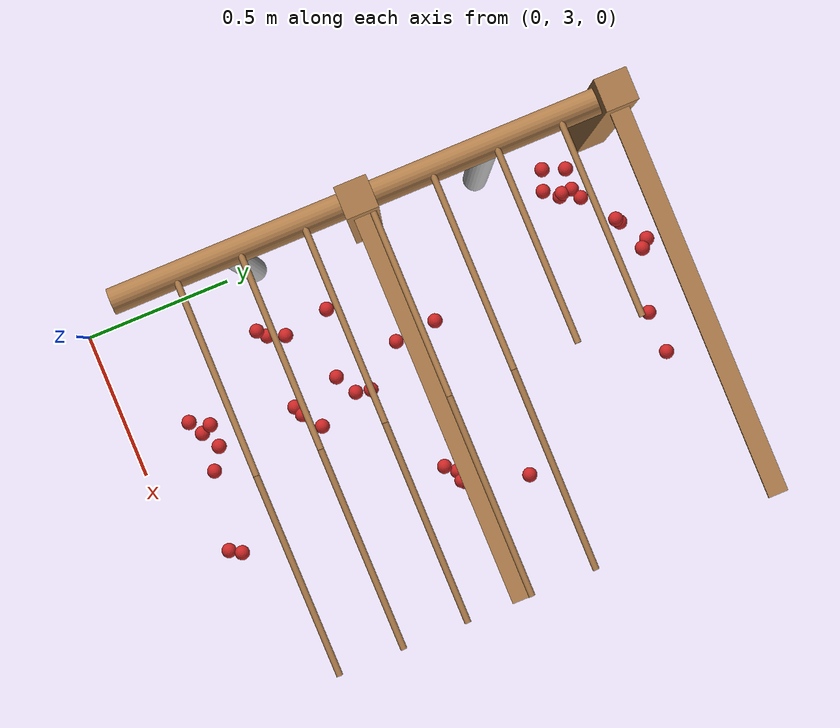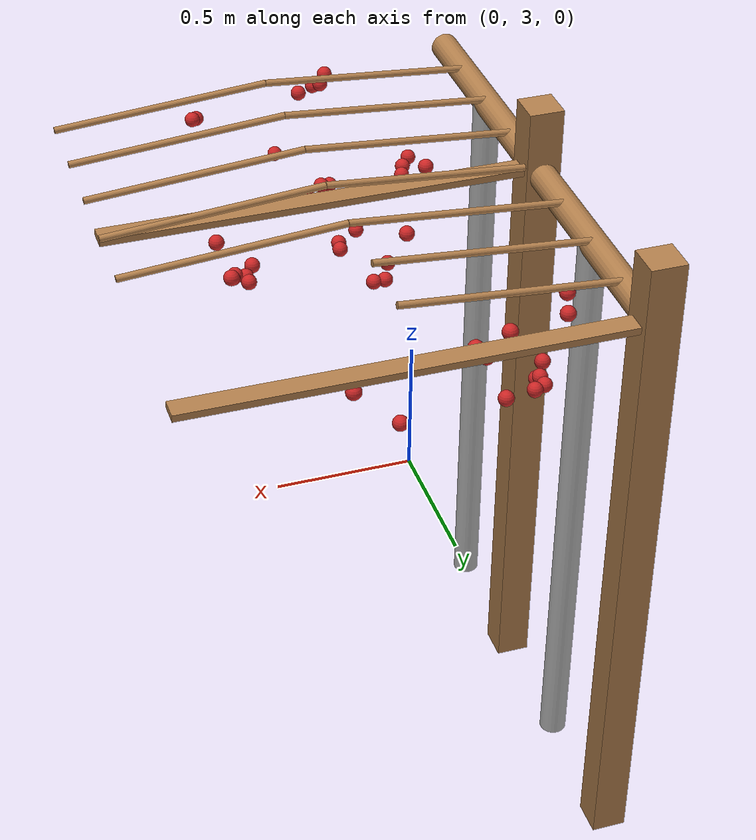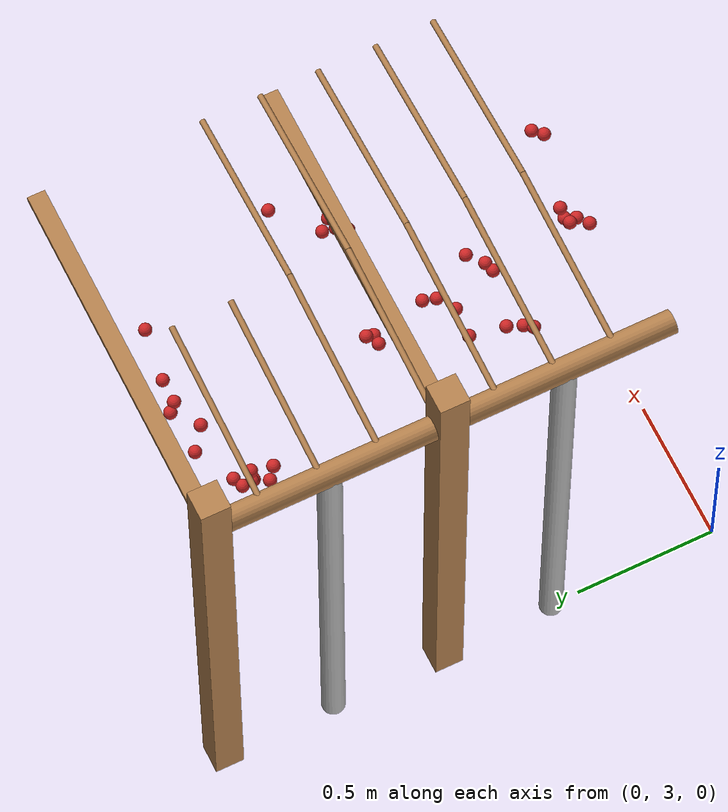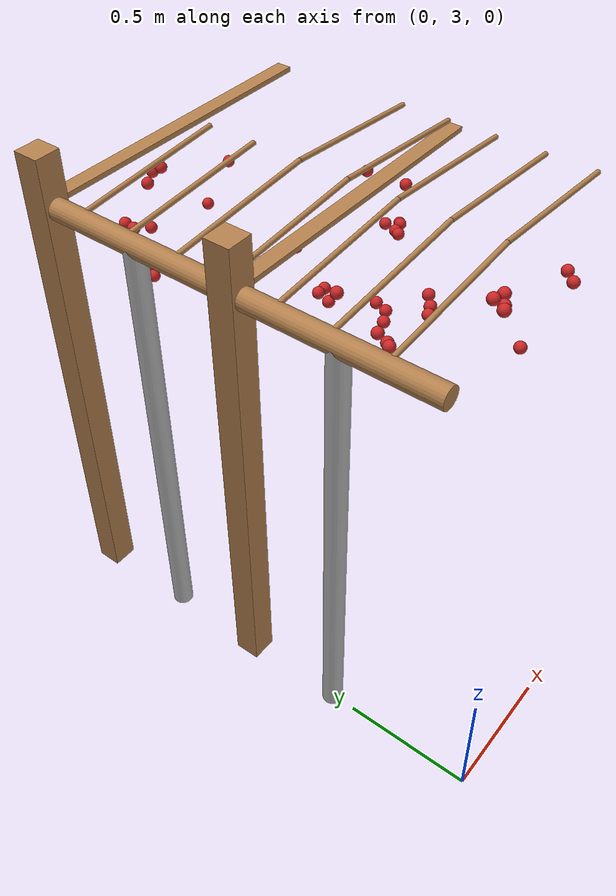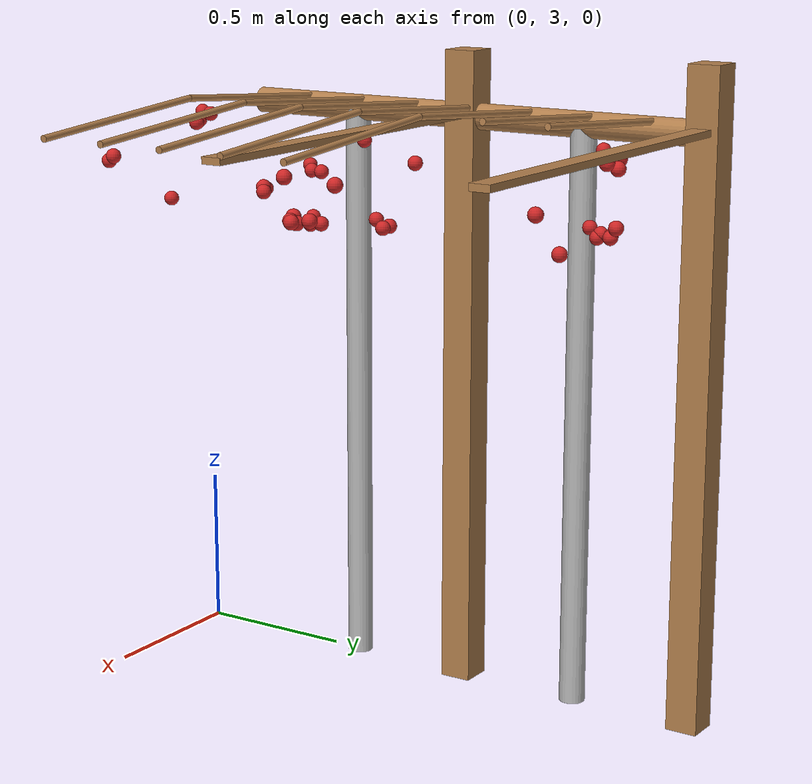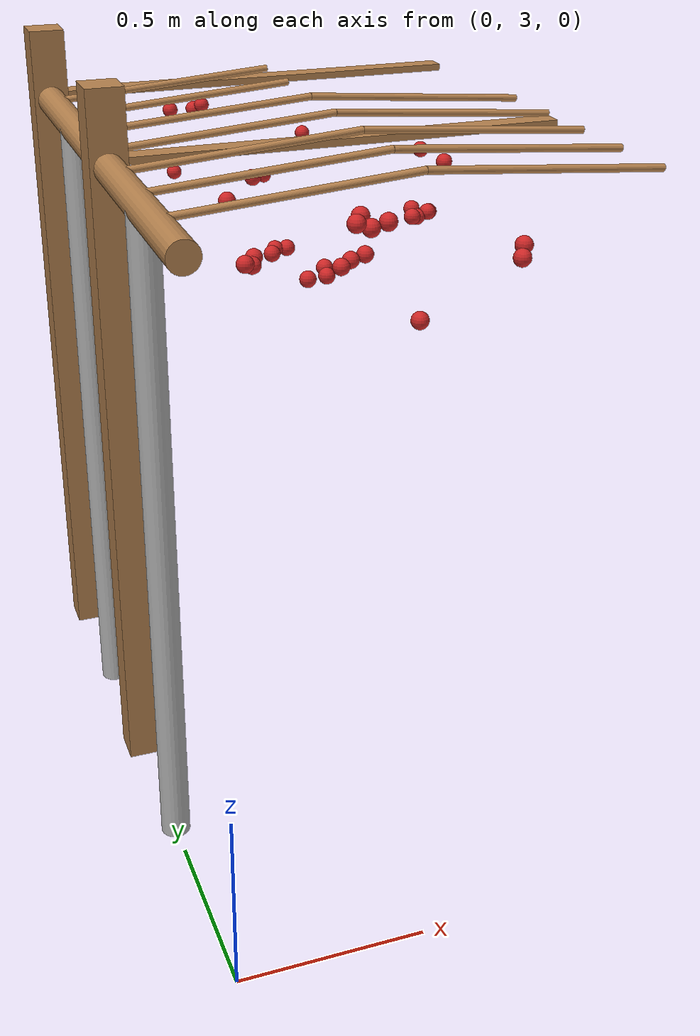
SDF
<sdf version="1.4">
 <model name="pergola">
  <include><name>post_5</name><pose>0.0 4.0 0 0 0 0</pose><uri>model://post</uri></include>
  <include><name>post_6</name><pose>0.0 4.800000000000001 0 0 0 0</pose><uri>model://post</uri></include>
  <link name="beam_5">
   <pose>0.625 4.0 1.81 0 0 0</pose>
   <collision name="collision"><geometry><box><size>1.25 0.06 0.02</size></box></geometry></collision>
   <visual name="visual">
    <geometry><box><size>1.25 0.06 0.02</size></box></geometry>
    <material><script><name>Gazebo/Wood</name></script></material>
   </visual>
   <inertial>
    <mass>5</mass>
    <inertia>
     <ixx>0.0016666666666666668</ixx>
     <ixy>0.0</ixy>
     <ixz>0.0</ixz>
     <iyy>0.6525416666666667</iyy>
     <iyz>0.0</iyz>
     <izz>0.6512083333333333</izz>
    </inertia>
   </inertial>
  </link>
  <link name="beam_6">
   <pose>0.625 4.800000000000001 1.81 0 0 0</pose>
   <collision name="collision"><geometry><box><size>1.25 0.06 0.02</size></box></geometry></collision>
   <visual name="visual">
    <geometry><box><size>1.25 0.06 0.02</size></box></geometry>
    <material><script><name>Gazebo/Wood</name></script></material>
   </visual>
   <inertial>
    <mass>5</mass>
    <inertia>
     <ixx>0.0016666666666666668</ixx>
     <ixy>0.0</ixy>
     <ixz>0.0</ixz>
     <iyy>0.6525416666666667</iyy>
     <iyz>0.0</iyz>
     <izz>0.6512083333333333</izz>
    </inertia>
   </inertial>
  </link>
  <include><name>tree_4</name><pose>0.0 3.6 0 0 0 0</pose><uri>model://tree_trunk</uri></include>
  <include><name>tree_5</name><pose>0.0 4.4 0 0 0 0</pose><uri>model://tree_trunk</uri></include>
  <link name="baseBranch_4">
   <pose>0.0 3.6 1.8 1.5707963267948966 0 0</pose>
   <collision name="collision">
    <geometry><cylinder><radius>0.04</radius><length>0.74</length></cylinder></geometry>
   </collision>
   <visual name="visual">
    <geometry><cylinder><radius>0.04</radius><length>0.74</length></cylinder></geometry>
    <material><script><name>Gazebo/WoodFloor</name></script></material>
   </visual>
   <inertial>
    <mass>10</mass>
    <inertia>
     <ixx>0.4603333333333333</ixx>
     <ixy>0.0</ixy>
     <ixz>0.0</ixz>
     <iyy>0.4603333333333333</iyy>
     <iyz>0.0</iyz>
     <izz>0.008</izz>
    </inertia>
   </inertial>
  </link>
  <link name="baseBranch_5">
   <pose>0.0 4.4 1.8 1.5707963267948966 0 0</pose>
   <collision name="collision">
    <geometry><cylinder><radius>0.04</radius><length>0.74</length></cylinder></geometry>
   </collision>
   <visual name="visual">
    <geometry><cylinder><radius>0.04</radius><length>0.74</length></cylinder></geometry>
    <material><script><name>Gazebo/WoodFloor</name></script></material>
   </visual>
   <inertial>
    <mass>10</mass>
    <inertia>
     <ixx>0.4603333333333333</ixx>
     <ixy>0.0</ixy>
     <ixz>0.0</ixz>
     <iyy>0.4603333333333333</iyy>
     <iyz>0.0</iyz>
     <izz>0.008</izz>
    </inertia>
   </inertial>
  </link>
  <link name="vine_34">
   <pose>0.3125 3.43 1.85 0 1.4909663410826592 0</pose>
   <collision name="collision">
    <geometry><cylinder><radius>0.01</radius><length>0.6269968101992226</length></cylinder></geometry>
   </collision>
   <visual name="visual">
    <geometry><cylinder><radius>0.01</radius><length>0.6269968101992226</length></cylinder></geometry>
    <material><script><name>Gazebo/WoodFloor</name></script></material>
   </visual>
   <inertial>
    <mass>5</mass>
    <inertia>
     <ixx>0.1639270833333333</ixx>
     <ixy>0.0</ixy>
     <ixz>0.0</ixz>
     <iyy>0.1639270833333333</iyy>
     <iyz>0.0</iyz>
     <izz>0.00025</izz>
    </inertia>
   </inertial>
  </link>
  <link name="vine_35">
   <pose>0.9375 3.43 1.85 0 -1.4909663410826592 0</pose>
   <collision name="collision">
    <geometry><cylinder><radius>0.01</radius><length>0.6269968101992226</length></cylinder></geometry>
   </collision>
   <visual name="visual">
    <geometry><cylinder><radius>0.01</radius><length>0.6269968101992226</length></cylinder></geometry>
    <material><script><name>Gazebo/WoodFloor</name></script></material>
   </visual>
   <inertial>
    <mass>5</mass>
    <inertia>
     <ixx>0.1639270833333333</ixx>
     <ixy>0.0</ixy>
     <ixz>0.0</ixz>
     <iyy>0.1639270833333333</iyy>
     <iyz>0.0</iyz>
     <izz>0.00025</izz>
    </inertia>
   </inertial>
  </link>
  <link name="vine_36">
   <pose>0.3125 3.63 1.85 0 1.4909663410826592 0</pose>
   <collision name="collision">
    <geometry><cylinder><radius>0.01</radius><length>0.6269968101992226</length></cylinder></geometry>
   </collision>
   <visual name="visual">
    <geometry><cylinder><radius>0.01</radius><length>0.6269968101992226</length></cylinder></geometry>
    <material><script><name>Gazebo/WoodFloor</name></script></material>
   </visual>
   <inertial>
    <mass>5</mass>
    <inertia>
     <ixx>0.1639270833333333</ixx>
     <ixy>0.0</ixy>
     <ixz>0.0</ixz>
     <iyy>0.1639270833333333</iyy>
     <iyz>0.0</iyz>
     <izz>0.00025</izz>
    </inertia>
   </inertial>
  </link>
  <link name="vine_37">
   <pose>0.9375 3.63 1.85 0 -1.4909663410826592 0</pose>
   <collision name="collision">
    <geometry><cylinder><radius>0.01</radius><length>0.6269968101992226</length></cylinder></geometry>
   </collision>
   <visual name="visual">
    <geometry><cylinder><radius>0.01</radius><length>0.6269968101992226</length></cylinder></geometry>
    <material><script><name>Gazebo/WoodFloor</name></script></material>
   </visual>
   <inertial>
    <mass>5</mass>
    <inertia>
     <ixx>0.1639270833333333</ixx>
     <ixy>0.0</ixy>
     <ixz>0.0</ixz>
     <iyy>0.1639270833333333</iyy>
     <iyz>0.0</iyz>
     <izz>0.00025</izz>
    </inertia>
   </inertial>
  </link>
  <link name="vine_38">
   <pose>0.3125 3.83 1.85 0 1.4909663410826592 0</pose>
   <collision name="collision">
    <geometry><cylinder><radius>0.01</radius><length>0.6269968101992226</length></cylinder></geometry>
   </collision>
   <visual name="visual">
    <geometry><cylinder><radius>0.01</radius><length>0.6269968101992226</length></cylinder></geometry>
    <material><script><name>Gazebo/WoodFloor</name></script></material>
   </visual>
   <inertial>
    <mass>5</mass>
    <inertia>
     <ixx>0.1639270833333333</ixx>
     <ixy>0.0</ixy>
     <ixz>0.0</ixz>
     <iyy>0.1639270833333333</iyy>
     <iyz>0.0</iyz>
     <izz>0.00025</izz>
    </inertia>
   </inertial>
  </link>
  <link name="vine_39">
   <pose>0.9375 3.83 1.85 0 -1.4909663410826592 0</pose>
   <collision name="collision">
    <geometry><cylinder><radius>0.01</radius><length>0.6269968101992226</length></cylinder></geometry>
   </collision>
   <visual name="visual">
    <geometry><cylinder><radius>0.01</radius><length>0.6269968101992226</length></cylinder></geometry>
    <material><script><name>Gazebo/WoodFloor</name></script></material>
   </visual>
   <inertial>
    <mass>5</mass>
    <inertia>
     <ixx>0.1639270833333333</ixx>
     <ixy>0.0</ixy>
     <ixz>0.0</ixz>
     <iyy>0.1639270833333333</iyy>
     <iyz>0.0</iyz>
     <izz>0.00025</izz>
    </inertia>
   </inertial>
  </link>
  <link name="vine_40">
   <pose>0.3125 4.03 1.85 0 1.4909663410826592 0</pose>
   <collision name="collision">
    <geometry><cylinder><radius>0.01</radius><length>0.6269968101992226</length></cylinder></geometry>
   </collision>
   <visual name="visual">
    <geometry><cylinder><radius>0.01</radius><length>0.6269968101992226</length></cylinder></geometry>
    <material><script><name>Gazebo/WoodFloor</name></script></material>
   </visual>
   <inertial>
    <mass>5</mass>
    <inertia>
     <ixx>0.1639270833333333</ixx>
     <ixy>0.0</ixy>
     <ixz>0.0</ixz>
     <iyy>0.1639270833333333</iyy>
     <iyz>0.0</iyz>
     <izz>0.00025</izz>
    </inertia>
   </inertial>
  </link>
  <link name="vine_41">
   <pose>0.9375 4.03 1.85 0 -1.4909663410826592 0</pose>
   <collision name="collision">
    <geometry><cylinder><radius>0.01</radius><length>0.6269968101992226</length></cylinder></geometry>
   </collision>
   <visual name="visual">
    <geometry><cylinder><radius>0.01</radius><length>0.6269968101992226</length></cylinder></geometry>
    <material><script><name>Gazebo/WoodFloor</name></script></material>
   </visual>
   <inertial>
    <mass>5</mass>
    <inertia>
     <ixx>0.1639270833333333</ixx>
     <ixy>0.0</ixy>
     <ixz>0.0</ixz>
     <iyy>0.1639270833333333</iyy>
     <iyz>0.0</iyz>
     <izz>0.00025</izz>
    </inertia>
   </inertial>
  </link>
  <link name="vine_42">
   <pose>0.3125 4.23 1.85 0 1.4909663410826592 0</pose>
   <collision name="collision">
    <geometry><cylinder><radius>0.01</radius><length>0.6269968101992226</length></cylinder></geometry>
   </collision>
   <visual name="visual">
    <geometry><cylinder><radius>0.01</radius><length>0.6269968101992226</length></cylinder></geometry>
    <material><script><name>Gazebo/WoodFloor</name></script></material>
   </visual>
   <inertial>
    <mass>5</mass>
    <inertia>
     <ixx>0.1639270833333333</ixx>
     <ixy>0.0</ixy>
     <ixz>0.0</ixz>
     <iyy>0.1639270833333333</iyy>
     <iyz>0.0</iyz>
     <izz>0.00025</izz>
    </inertia>
   </inertial>
  </link>
  <link name="vine_43">
   <pose>0.9375 4.23 1.85 0 -1.4909663410826592 0</pose>
   <collision name="collision">
    <geometry><cylinder><radius>0.01</radius><length>0.6269968101992226</length></cylinder></geometry>
   </collision>
   <visual name="visual">
    <geometry><cylinder><radius>0.01</radius><length>0.6269968101992226</length></cylinder></geometry>
    <material><script><name>Gazebo/WoodFloor</name></script></material>
   </visual>
   <inertial>
    <mass>5</mass>
    <inertia>
     <ixx>0.1639270833333333</ixx>
     <ixy>0.0</ixy>
     <ixz>0.0</ixz>
     <iyy>0.1639270833333333</iyy>
     <iyz>0.0</iyz>
     <izz>0.00025</izz>
    </inertia>
   </inertial>
  </link>
  <link name="vine_44">
   <pose>0.3125 4.430000000000001 1.85 0 1.4909663410826592 0</pose>
   <collision name="collision">
    <geometry><cylinder><radius>0.01</radius><length>0.6269968101992226</length></cylinder></geometry>
   </collision>
   <visual name="visual">
    <geometry><cylinder><radius>0.01</radius><length>0.6269968101992226</length></cylinder></geometry>
    <material><script><name>Gazebo/WoodFloor</name></script></material>
   </visual>
   <inertial>
    <mass>5</mass>
    <inertia>
     <ixx>0.1639270833333333</ixx>
     <ixy>0.0</ixy>
     <ixz>0.0</ixz>
     <iyy>0.1639270833333333</iyy>
     <iyz>0.0</iyz>
     <izz>0.00025</izz>
    </inertia>
   </inertial>
  </link>
  <link name="vine_46">
   <pose>0.3125 4.630000000000001 1.85 0 1.4909663410826592 0</pose>
   <collision name="collision">
    <geometry><cylinder><radius>0.01</radius><length>0.6269968101992226</length></cylinder></geometry>
   </collision>
   <visual name="visual">
    <geometry><cylinder><radius>0.01</radius><length>0.6269968101992226</length></cylinder></geometry>
    <material><script><name>Gazebo/WoodFloor</name></script></material>
   </visual>
   <inertial>
    <mass>5</mass>
    <inertia>
     <ixx>0.1639270833333333</ixx>
     <ixy>0.0</ixy>
     <ixz>0.0</ixz>
     <iyy>0.1639270833333333</iyy>
     <iyz>0.0</iyz>
     <izz>0.00025</izz>
    </inertia>
   </inertial>
  </link>
  <link name="fruit_12">
   <pose>0.4834134630435858 3.59911568775079 1.6055417015193405 0 0 0</pose>
   <collision name="fruit_collision_12"><geometry><sphere><radius>0.022</radius></sphere></geometry></collision>
   <visual name="visual">
    <geometry><sphere><radius>0.022</radius></sphere></geometry>
    <material><script><name>Gazebo/Red</name></script></material>
   </visual>
   <inertial>
    <mass>0.05</mass>
    <inertia>
     <ixx>9.679999999999999e-06</ixx>
     <ixy>0.0</ixy>
     <ixz>0.0</ixz>
     <iyy>9.679999999999999e-06</iyy>
     <iyz>0.0</iyz>
     <izz>9.679999999999999e-06</izz>
    </inertia>
   </inertial>
   <sensor name="fruit_contact_12" type="contact">
    <plugin name="contact_plugin_12" filename="libcontact_plugin.so"/>
    <contact><collision>fruit_collision_12</collision><topic>fruit_contact_topic_12</topic></contact>
   </sensor>
  </link>
  <link name="fruit_21">
   <pose>0.40765127704695264 4.076052340447977 1.7093465545084325 0 0 0</pose>
   <collision name="fruit_collision_21"><geometry><sphere><radius>0.022</radius></sphere></geometry></collision>
   <visual name="visual">
    <geometry><sphere><radius>0.022</radius></sphere></geometry>
    <material><script><name>Gazebo/Red</name></script></material>
   </visual>
   <inertial>
    <mass>0.05</mass>
    <inertia>
     <ixx>9.679999999999999e-06</ixx>
     <ixy>0.0</ixy>
     <ixz>0.0</ixz>
     <iyy>9.679999999999999e-06</iyy>
     <iyz>0.0</iyz>
     <izz>9.679999999999999e-06</izz>
    </inertia>
   </inertial>
   <sensor name="fruit_contact_21" type="contact">
    <plugin name="contact_plugin_21" filename="libcontact_plugin.so"/>
    <contact><collision>fruit_collision_21</collision><topic>fruit_contact_topic_21</topic></contact>
   </sensor>
  </link>
  <link name="fruit_28">
   <pose>0.9242271844380472 3.9910186740867277 1.7272919361449433 0 0 0</pose>
   <collision name="fruit_collision_28"><geometry><sphere><radius>0.022</radius></sphere></geometry></collision>
   <visual name="visual">
    <geometry><sphere><radius>0.022</radius></sphere></geometry>
    <material><script><name>Gazebo/Red</name></script></material>
   </visual>
   <inertial>
    <mass>0.05</mass>
    <inertia>
     <ixx>9.679999999999999e-06</ixx>
     <ixy>0.0</ixy>
     <ixz>0.0</ixz>
     <iyy>9.679999999999999e-06</iyy>
     <iyz>0.0</iyz>
     <izz>9.679999999999999e-06</izz>
    </inertia>
   </inertial>
   <sensor name="fruit_contact_28" type="contact">
    <plugin name="contact_plugin_28" filename="libcontact_plugin.so"/>
    <contact><collision>fruit_collision_28</collision><topic>fruit_contact_topic_28</topic></contact>
   </sensor>
  </link>
  <link name="fruit_74">
   <pose>0.3360459811288775 4.672762717601299 1.7639095994530745 0 0 0</pose>
   <collision name="fruit_collision_74"><geometry><sphere><radius>0.022</radius></sphere></geometry></collision>
   <visual name="visual">
    <geometry><sphere><radius>0.022</radius></sphere></geometry>
    <material><script><name>Gazebo/Red</name></script></material>
   </visual>
   <inertial>
    <mass>0.05</mass>
    <inertia>
     <ixx>9.679999999999999e-06</ixx>
     <ixy>0.0</ixy>
     <ixz>0.0</ixz>
     <iyy>9.679999999999999e-06</iyy>
     <iyz>0.0</iyz>
     <izz>9.679999999999999e-06</izz>
    </inertia>
   </inertial>
   <sensor name="fruit_contact_74" type="contact">
    <plugin name="contact_plugin_74" filename="libcontact_plugin.so"/>
    <contact><collision>fruit_collision_74</collision><topic>fruit_contact_topic_74</topic></contact>
   </sensor>
  </link>
  <link name="fruit_108">
   <pose>0.12134564332392866 4.53050767307306 1.7481762162518155 0 0 0</pose>
   <collision name="fruit_collision_108"><geometry><sphere><radius>0.022</radius></sphere></geometry></collision>
   <visual name="visual">
    <geometry><sphere><radius>0.022</radius></sphere></geometry>
    <material><script><name>Gazebo/Red</name></script></material>
   </visual>
   <inertial>
    <mass>0.05</mass>
    <inertia>
     <ixx>9.679999999999999e-06</ixx>
     <ixy>0.0</ixy>
     <ixz>0.0</ixz>
     <iyy>9.679999999999999e-06</iyy>
     <iyz>0.0</iyz>
     <izz>9.679999999999999e-06</izz>
    </inertia>
   </inertial>
   <sensor name="fruit_contact_108" type="contact">
    <plugin name="contact_plugin_108" filename="libcontact_plugin.so"/>
    <contact><collision>fruit_collision_108</collision><topic>fruit_contact_topic_108</topic></contact>
   </sensor>
  </link>
  <link name="fruit_133">
   <pose>0.5127340166413553 3.6117168836817246 1.6158336174883383 0 0 0</pose>
   <collision name="fruit_collision_133"><geometry><sphere><radius>0.022</radius></sphere></geometry></collision>
   <visual name="visual">
    <geometry><sphere><radius>0.022</radius></sphere></geometry>
    <material><script><name>Gazebo/Red</name></script></material>
   </visual>
   <inertial>
    <mass>0.05</mass>
    <inertia>
     <ixx>9.679999999999999e-06</ixx>
     <ixy>0.0</ixy>
     <ixz>0.0</ixz>
     <iyy>9.679999999999999e-06</iyy>
     <iyz>0.0</iyz>
     <izz>9.679999999999999e-06</izz>
    </inertia>
   </inertial>
   <sensor name="fruit_contact_133" type="contact">
    <plugin name="contact_plugin_133" filename="libcontact_plugin.so"/>
    <contact><collision>fruit_collision_133</collision><topic>fruit_contact_topic_133</topic></contact>
   </sensor>
  </link>
  <link name="fruit_173">
   <pose>0.9274589835530925 4.159807414453651 1.7201261096575036 0 0 0</pose>
   <collision name="fruit_collision_173"><geometry><sphere><radius>0.022</radius></sphere></geometry></collision>
   <visual name="visual">
    <geometry><sphere><radius>0.022</radius></sphere></geometry>
    <material><script><name>Gazebo/Red</name></script></material>
   </visual>
   <inertial>
    <mass>0.05</mass>
    <inertia>
     <ixx>9.679999999999999e-06</ixx>
     <ixy>0.0</ixy>
     <ixz>0.0</ixz>
     <iyy>9.679999999999999e-06</iyy>
     <iyz>0.0</iyz>
     <izz>9.679999999999999e-06</izz>
    </inertia>
   </inertial>
   <sensor name="fruit_contact_173" type="contact">
    <plugin name="contact_plugin_173" filename="libcontact_plugin.so"/>
    <contact><collision>fruit_collision_173</collision><topic>fruit_contact_topic_173</topic></contact>
   </sensor>
  </link>
  <link name="fruit_174">
   <pose>0.25631032588774505 3.7973262343729726 1.737641921446603 0 0 0</pose>
   <collision name="fruit_collision_174"><geometry><sphere><radius>0.022</radius></sphere></geometry></collision>
   <visual name="visual">
    <geometry><sphere><radius>0.022</radius></sphere></geometry>
    <material><script><name>Gazebo/Red</name></script></material>
   </visual>
   <inertial>
    <mass>0.05</mass>
    <inertia>
     <ixx>9.679999999999999e-06</ixx>
     <ixy>0.0</ixy>
     <ixz>0.0</ixz>
     <iyy>9.679999999999999e-06</iyy>
     <iyz>0.0</iyz>
     <izz>9.679999999999999e-06</izz>
    </inertia>
   </inertial>
   <sensor name="fruit_contact_174" type="contact">
    <plugin name="contact_plugin_174" filename="libcontact_plugin.so"/>
    <contact><collision>fruit_collision_174</collision><topic>fruit_contact_topic_174</topic></contact>
   </sensor>
  </link>
  <link name="fruit_191">
   <pose>0.17408714606733267 4.520110832118084 1.5319348786535854 0 0 0</pose>
   <collision name="fruit_collision_191"><geometry><sphere><radius>0.022</radius></sphere></geometry></collision>
   <visual name="visual">
    <geometry><sphere><radius>0.022</radius></sphere></geometry>
    <material><script><name>Gazebo/Red</name></script></material>
   </visual>
   <inertial>
    <mass>0.05</mass>
    <inertia>
     <ixx>9.679999999999999e-06</ixx>
     <ixy>0.0</ixy>
     <ixz>0.0</ixz>
     <iyy>9.679999999999999e-06</iyy>
     <iyz>0.0</iyz>
     <izz>9.679999999999999e-06</izz>
    </inertia>
   </inertial>
   <sensor name="fruit_contact_191" type="contact">
    <plugin name="contact_plugin_191" filename="libcontact_plugin.so"/>
    <contact><collision>fruit_collision_191</collision><topic>fruit_contact_topic_191</topic></contact>
   </sensor>
  </link>
  <link name="fruit_192">
   <pose>0.40849048372862906 3.3062115134032686 1.8077820700998566 0 0 0</pose>
   <collision name="fruit_collision_192"><geometry><sphere><radius>0.022</radius></sphere></geometry></collision>
   <visual name="visual">
    <geometry><sphere><radius>0.022</radius></sphere></geometry>
    <material><script><name>Gazebo/Red</name></script></material>
   </visual>
   <inertial>
    <mass>0.05</mass>
    <inertia>
     <ixx>9.679999999999999e-06</ixx>
     <ixy>0.0</ixy>
     <ixz>0.0</ixz>
     <iyy>9.679999999999999e-06</iyy>
     <iyz>0.0</iyz>
     <izz>9.679999999999999e-06</izz>
    </inertia>
   </inertial>
   <sensor name="fruit_contact_192" type="contact">
    <plugin name="contact_plugin_192" filename="libcontact_plugin.so"/>
    <contact><collision>fruit_collision_192</collision><topic>fruit_contact_topic_192</topic></contact>
   </sensor>
  </link>
  <link name="fruit_215">
   <pose>0.23522473394249827 3.5822662454341136 1.6456447523365925 0 0 0</pose>
   <collision name="fruit_collision_215"><geometry><sphere><radius>0.022</radius></sphere></geometry></collision>
   <visual name="visual">
    <geometry><sphere><radius>0.022</radius></sphere></geometry>
    <material><script><name>Gazebo/Red</name></script></material>
   </visual>
   <inertial>
    <mass>0.05</mass>
    <inertia>
     <ixx>9.679999999999999e-06</ixx>
     <ixy>0.0</ixy>
     <ixz>0.0</ixz>
     <iyy>9.679999999999999e-06</iyy>
     <iyz>0.0</iyz>
     <izz>9.679999999999999e-06</izz>
    </inertia>
   </inertial>
   <sensor name="fruit_contact_215" type="contact">
    <plugin name="contact_plugin_215" filename="libcontact_plugin.so"/>
    <contact><collision>fruit_collision_215</collision><topic>fruit_contact_topic_215</topic></contact>
   </sensor>
  </link>
  <link name="fruit_287">
   <pose>0.8130775569251404 3.939436921522546 1.600087138621473 0 0 0</pose>
   <collision name="fruit_collision_287"><geometry><sphere><radius>0.022</radius></sphere></geometry></collision>
   <visual name="visual">
    <geometry><sphere><radius>0.022</radius></sphere></geometry>
    <material><script><name>Gazebo/Red</name></script></material>
   </visual>
   <inertial>
    <mass>0.05</mass>
    <inertia>
     <ixx>9.679999999999999e-06</ixx>
     <ixy>0.0</ixy>
     <ixz>0.0</ixz>
     <iyy>9.679999999999999e-06</iyy>
     <iyz>0.0</iyz>
     <izz>9.679999999999999e-06</izz>
    </inertia>
   </inertial>
   <sensor name="fruit_contact_287" type="contact">
    <plugin name="contact_plugin_287" filename="libcontact_plugin.so"/>
    <contact><collision>fruit_collision_287</collision><topic>fruit_contact_topic_287</topic></contact>
   </sensor>
  </link>
  <link name="fruit_290">
   <pose>0.44809727982886843 3.744606597865597 1.52983505122033 0 0 0</pose>
   <collision name="fruit_collision_290"><geometry><sphere><radius>0.022</radius></sphere></geometry></collision>
   <visual name="visual">
    <geometry><sphere><radius>0.022</radius></sphere></geometry>
    <material><script><name>Gazebo/Red</name></script></material>
   </visual>
   <inertial>
    <mass>0.05</mass>
    <inertia>
     <ixx>9.679999999999999e-06</ixx>
     <ixy>0.0</ixy>
     <ixz>0.0</ixz>
     <iyy>9.679999999999999e-06</iyy>
     <iyz>0.0</iyz>
     <izz>9.679999999999999e-06</izz>
    </inertia>
   </inertial>
   <sensor name="fruit_contact_290" type="contact">
    <plugin name="contact_plugin_290" filename="libcontact_plugin.so"/>
    <contact><collision>fruit_collision_290</collision><topic>fruit_contact_topic_290</topic></contact>
   </sensor>
  </link>
  <link name="fruit_291">
   <pose>0.6246707617267868 4.672296843162339 1.5396930177174197 0 0 0</pose>
   <collision name="fruit_collision_291"><geometry><sphere><radius>0.022</radius></sphere></geometry></collision>
   <visual name="visual">
    <geometry><sphere><radius>0.022</radius></sphere></geometry>
    <material><script><name>Gazebo/Red</name></script></material>
   </visual>
   <inertial>
    <mass>0.05</mass>
    <inertia>
     <ixx>9.679999999999999e-06</ixx>
     <ixy>0.0</ixy>
     <ixz>0.0</ixz>
     <iyy>9.679999999999999e-06</iyy>
     <iyz>0.0</iyz>
     <izz>9.679999999999999e-06</izz>
    </inertia>
   </inertial>
   <sensor name="fruit_contact_291" type="contact">
    <plugin name="contact_plugin_291" filename="libcontact_plugin.so"/>
    <contact><collision>fruit_collision_291</collision><topic>fruit_contact_topic_291</topic></contact>
   </sensor>
  </link>
  <link name="fruit_293">
   <pose>0.3452633789615127 4.69289483706376 1.570769835517462 0 0 0</pose>
   <collision name="fruit_collision_293"><geometry><sphere><radius>0.022</radius></sphere></geometry></collision>
   <visual name="visual">
    <geometry><sphere><radius>0.022</radius></sphere></geometry>
    <material><script><name>Gazebo/Red</name></script></material>
   </visual>
   <inertial>
    <mass>0.05</mass>
    <inertia>
     <ixx>9.679999999999999e-06</ixx>
     <ixy>0.0</ixy>
     <ixz>0.0</ixz>
     <iyy>9.679999999999999e-06</iyy>
     <iyz>0.0</iyz>
     <izz>9.679999999999999e-06</izz>
    </inertia>
   </inertial>
   <sensor name="fruit_contact_293" type="contact">
    <plugin name="contact_plugin_293" filename="libcontact_plugin.so"/>
    <contact><collision>fruit_collision_293</collision><topic>fruit_contact_topic_293</topic></contact>
   </sensor>
  </link>
  <link name="fruit_304">
   <pose>0.749260013710288 4.668506624922295 1.6630965181134532 0 0 0</pose>
   <collision name="fruit_collision_304"><geometry><sphere><radius>0.022</radius></sphere></geometry></collision>
   <visual name="visual">
    <geometry><sphere><radius>0.022</radius></sphere></geometry>
    <material><script><name>Gazebo/Red</name></script></material>
   </visual>
   <inertial>
    <mass>0.05</mass>
    <inertia>
     <ixx>9.679999999999999e-06</ixx>
     <ixy>0.0</ixy>
     <ixz>0.0</ixz>
     <iyy>9.679999999999999e-06</iyy>
     <iyz>0.0</iyz>
     <izz>9.679999999999999e-06</izz>
    </inertia>
   </inertial>
   <sensor name="fruit_contact_304" type="contact">
    <plugin name="contact_plugin_304" filename="libcontact_plugin.so"/>
    <contact><collision>fruit_collision_304</collision><topic>fruit_contact_topic_304</topic></contact>
   </sensor>
  </link>
  <link name="fruit_312">
   <pose>0.41845353838210714 3.948583874880688 1.536457117817739 0 0 0</pose>
   <collision name="fruit_collision_312"><geometry><sphere><radius>0.022</radius></sphere></geometry></collision>
   <visual name="visual">
    <geometry><sphere><radius>0.022</radius></sphere></geometry>
    <material><script><name>Gazebo/Red</name></script></material>
   </visual>
   <inertial>
    <mass>0.05</mass>
    <inertia>
     <ixx>9.679999999999999e-06</ixx>
     <ixy>0.0</ixy>
     <ixz>0.0</ixz>
     <iyy>9.679999999999999e-06</iyy>
     <iyz>0.0</iyz>
     <izz>9.679999999999999e-06</izz>
    </inertia>
   </inertial>
   <sensor name="fruit_contact_312" type="contact">
    <plugin name="contact_plugin_312" filename="libcontact_plugin.so"/>
    <contact><collision>fruit_collision_312</collision><topic>fruit_contact_topic_312</topic></contact>
   </sensor>
  </link>
  <link name="fruit_402">
   <pose>0.8710477667392147 3.970916410769179 1.5990090655866835 0 0 0</pose>
   <collision name="fruit_collision_402"><geometry><sphere><radius>0.022</radius></sphere></geometry></collision>
   <visual name="visual">
    <geometry><sphere><radius>0.022</radius></sphere></geometry>
    <material><script><name>Gazebo/Red</name></script></material>
   </visual>
   <inertial>
    <mass>0.05</mass>
    <inertia>
     <ixx>9.679999999999999e-06</ixx>
     <ixy>0.0</ixy>
     <ixz>0.0</ixz>
     <iyy>9.679999999999999e-06</iyy>
     <iyz>0.0</iyz>
     <izz>9.679999999999999e-06</izz>
    </inertia>
   </inertial>
   <sensor name="fruit_contact_402" type="contact">
    <plugin name="contact_plugin_402" filename="libcontact_plugin.so"/>
    <contact><collision>fruit_collision_402</collision><topic>fruit_contact_topic_402</topic></contact>
   </sensor>
  </link>
  <link name="fruit_431">
   <pose>0.27939476020116333 3.65544694512928 1.6347081145677345 0 0 0</pose>
   <collision name="fruit_collision_431"><geometry><sphere><radius>0.022</radius></sphere></geometry></collision>
   <visual name="visual">
    <geometry><sphere><radius>0.022</radius></sphere></geometry>
    <material><script><name>Gazebo/Red</name></script></material>
   </visual>
   <inertial>
    <mass>0.05</mass>
    <inertia>
     <ixx>9.679999999999999e-06</ixx>
     <ixy>0.0</ixy>
     <ixz>0.0</ixz>
     <iyy>9.679999999999999e-06</iyy>
     <iyz>0.0</iyz>
     <izz>9.679999999999999e-06</izz>
    </inertia>
   </inertial>
   <sensor name="fruit_contact_431" type="contact">
    <plugin name="contact_plugin_431" filename="libcontact_plugin.so"/>
    <contact><collision>fruit_collision_431</collision><topic>fruit_contact_topic_431</topic></contact>
   </sensor>
  </link>
  <link name="fruit_446">
   <pose>0.8400455949466354 3.969658446394286 1.588202327010113 0 0 0</pose>
   <collision name="fruit_collision_446"><geometry><sphere><radius>0.022</radius></sphere></geometry></collision>
   <visual name="visual">
    <geometry><sphere><radius>0.022</radius></sphere></geometry>
    <material><script><name>Gazebo/Red</name></script></material>
   </visual>
   <inertial>
    <mass>0.05</mass>
    <inertia>
     <ixx>9.679999999999999e-06</ixx>
     <ixy>0.0</ixy>
     <ixz>0.0</ixz>
     <iyy>9.679999999999999e-06</iyy>
     <iyz>0.0</iyz>
     <izz>9.679999999999999e-06</izz>
    </inertia>
   </inertial>
   <sensor name="fruit_contact_446" type="contact">
    <plugin name="contact_plugin_446" filename="libcontact_plugin.so"/>
    <contact><collision>fruit_collision_446</collision><topic>fruit_contact_topic_446</topic></contact>
   </sensor>
  </link>
  <link name="fruit_449">
   <pose>0.44330956346198647 4.712047472865811 1.7629709675704583 0 0 0</pose>
   <collision name="fruit_collision_449"><geometry><sphere><radius>0.022</radius></sphere></geometry></collision>
   <visual name="visual">
    <geometry><sphere><radius>0.022</radius></sphere></geometry>
    <material><script><name>Gazebo/Red</name></script></material>
   </visual>
   <inertial>
    <mass>0.05</mass>
    <inertia>
     <ixx>9.679999999999999e-06</ixx>
     <ixy>0.0</ixy>
     <ixz>0.0</ixz>
     <iyy>9.679999999999999e-06</iyy>
     <iyz>0.0</iyz>
     <izz>9.679999999999999e-06</izz>
    </inertia>
   </inertial>
   <sensor name="fruit_contact_449" type="contact">
    <plugin name="contact_plugin_449" filename="libcontact_plugin.so"/>
    <contact><collision>fruit_collision_449</collision><topic>fruit_contact_topic_449</topic></contact>
   </sensor>
  </link>
  <link name="fruit_483">
   <pose>0.42210235798683454 4.735096198995128 1.7477051968377695 0 0 0</pose>
   <collision name="fruit_collision_483"><geometry><sphere><radius>0.022</radius></sphere></geometry></collision>
   <visual name="visual">
    <geometry><sphere><radius>0.022</radius></sphere></geometry>
    <material><script><name>Gazebo/Red</name></script></material>
   </visual>
   <inertial>
    <mass>0.05</mass>
    <inertia>
     <ixx>9.679999999999999e-06</ixx>
     <ixy>0.0</ixy>
     <ixz>0.0</ixz>
     <iyy>9.679999999999999e-06</iyy>
     <iyz>0.0</iyz>
     <izz>9.679999999999999e-06</izz>
    </inertia>
   </inertial>
   <sensor name="fruit_contact_483" type="contact">
    <plugin name="contact_plugin_483" filename="libcontact_plugin.so"/>
    <contact><collision>fruit_collision_483</collision><topic>fruit_contact_topic_483</topic></contact>
   </sensor>
  </link>
  <link name="fruit_493">
   <pose>0.5215100445358706 3.8254483100954677 1.5268512099455582 0 0 0</pose>
   <collision name="fruit_collision_493"><geometry><sphere><radius>0.022</radius></sphere></geometry></collision>
   <visual name="visual">
    <geometry><sphere><radius>0.022</radius></sphere></geometry>
    <material><script><name>Gazebo/Red</name></script></material>
   </visual>
   <inertial>
    <mass>0.05</mass>
    <inertia>
     <ixx>9.679999999999999e-06</ixx>
     <ixy>0.0</ixy>
     <ixz>0.0</ixz>
     <iyy>9.679999999999999e-06</iyy>
     <iyz>0.0</iyz>
     <izz>9.679999999999999e-06</izz>
    </inertia>
   </inertial>
   <sensor name="fruit_contact_493" type="contact">
    <plugin name="contact_plugin_493" filename="libcontact_plugin.so"/>
    <contact><collision>fruit_collision_493</collision><topic>fruit_contact_topic_493</topic></contact>
   </sensor>
  </link>
  <link name="fruit_503">
   <pose>0.8780915639943446 3.978374353161307 1.596578131350061 0 0 0</pose>
   <collision name="fruit_collision_503"><geometry><sphere><radius>0.022</radius></sphere></geometry></collision>
   <visual name="visual">
    <geometry><sphere><radius>0.022</radius></sphere></geometry>
    <material><script><name>Gazebo/Red</name></script></material>
   </visual>
   <inertial>
    <mass>0.05</mass>
    <inertia>
     <ixx>9.679999999999999e-06</ixx>
     <ixy>0.0</ixy>
     <ixz>0.0</ixz>
     <iyy>9.679999999999999e-06</iyy>
     <iyz>0.0</iyz>
     <izz>9.679999999999999e-06</izz>
    </inertia>
   </inertial>
   <sensor name="fruit_contact_503" type="contact">
    <plugin name="contact_plugin_503" filename="libcontact_plugin.so"/>
    <contact><collision>fruit_collision_503</collision><topic>fruit_contact_topic_503</topic></contact>
   </sensor>
  </link>
  <link name="fruit_517">
   <pose>0.5116182037577296 3.7801471579068933 1.5197251375815066 0 0 0</pose>
   <collision name="fruit_collision_517"><geometry><sphere><radius>0.022</radius></sphere></geometry></collision>
   <visual name="visual">
    <geometry><sphere><radius>0.022</radius></sphere></geometry>
    <material><script><name>Gazebo/Red</name></script></material>
   </visual>
   <inertial>
    <mass>0.05</mass>
    <inertia>
     <ixx>9.679999999999999e-06</ixx>
     <ixy>0.0</ixy>
     <ixz>0.0</ixz>
     <iyy>9.679999999999999e-06</iyy>
     <iyz>0.0</iyz>
     <izz>9.679999999999999e-06</izz>
    </inertia>
   </inertial>
   <sensor name="fruit_contact_517" type="contact">
    <plugin name="contact_plugin_517" filename="libcontact_plugin.so"/>
    <contact><collision>fruit_collision_517</collision><topic>fruit_contact_topic_517</topic></contact>
   </sensor>
  </link>
  <link name="fruit_534">
   <pose>0.4383769919858168 3.3595620551981407 1.8069048481217593 0 0 0</pose>
   <collision name="fruit_collision_534"><geometry><sphere><radius>0.022</radius></sphere></geometry></collision>
   <visual name="visual">
    <geometry><sphere><radius>0.022</radius></sphere></geometry>
    <material><script><name>Gazebo/Red</name></script></material>
   </visual>
   <inertial>
    <mass>0.05</mass>
    <inertia>
     <ixx>9.679999999999999e-06</ixx>
     <ixy>0.0</ixy>
     <ixz>0.0</ixz>
     <iyy>9.679999999999999e-06</iyy>
     <iyz>0.0</iyz>
     <izz>9.679999999999999e-06</izz>
    </inertia>
   </inertial>
   <sensor name="fruit_contact_534" type="contact">
    <plugin name="contact_plugin_534" filename="libcontact_plugin.so"/>
    <contact><collision>fruit_collision_534</collision><topic>fruit_contact_topic_534</topic></contact>
   </sensor>
  </link>
  <link name="fruit_548">
   <pose>0.8430585537287714 4.0154504903636505 1.5982414119141988 0 0 0</pose>
   <collision name="fruit_collision_548"><geometry><sphere><radius>0.022</radius></sphere></geometry></collision>
   <visual name="visual">
    <geometry><sphere><radius>0.022</radius></sphere></geometry>
    <material><script><name>Gazebo/Red</name></script></material>
   </visual>
   <inertial>
    <mass>0.05</mass>
    <inertia>
     <ixx>9.679999999999999e-06</ixx>
     <ixy>0.0</ixy>
     <ixz>0.0</ixz>
     <iyy>9.679999999999999e-06</iyy>
     <iyz>0.0</iyz>
     <izz>9.679999999999999e-06</izz>
    </inertia>
   </inertial>
   <sensor name="fruit_contact_548" type="contact">
    <plugin name="contact_plugin_548" filename="libcontact_plugin.so"/>
    <contact><collision>fruit_collision_548</collision><topic>fruit_contact_topic_548</topic></contact>
   </sensor>
  </link>
  <link name="fruit_549">
   <pose>0.26000046392592613 3.6055722272687842 1.6327800621111657 0 0 0</pose>
   <collision name="fruit_collision_549"><geometry><sphere><radius>0.022</radius></sphere></geometry></collision>
   <visual name="visual">
    <geometry><sphere><radius>0.022</radius></sphere></geometry>
    <material><script><name>Gazebo/Red</name></script></material>
   </visual>
   <inertial>
    <mass>0.05</mass>
    <inertia>
     <ixx>9.679999999999999e-06</ixx>
     <ixy>0.0</ixy>
     <ixz>0.0</ixz>
     <iyy>9.679999999999999e-06</iyy>
     <iyz>0.0</iyz>
     <izz>9.679999999999999e-06</izz>
    </inertia>
   </inertial>
   <sensor name="fruit_contact_549" type="contact">
    <plugin name="contact_plugin_549" filename="libcontact_plugin.so"/>
    <contact><collision>fruit_collision_549</collision><topic>fruit_contact_topic_549</topic></contact>
   </sensor>
  </link>
  <link name="fruit_561">
   <pose>0.4524106638757022 3.3286676557972608 1.7870751797456894 0 0 0</pose>
   <collision name="fruit_collision_561"><geometry><sphere><radius>0.022</radius></sphere></geometry></collision>
   <visual name="visual">
    <geometry><sphere><radius>0.022</radius></sphere></geometry>
    <material><script><name>Gazebo/Red</name></script></material>
   </visual>
   <inertial>
    <mass>0.05</mass>
    <inertia>
     <ixx>9.679999999999999e-06</ixx>
     <ixy>0.0</ixy>
     <ixz>0.0</ixz>
     <iyy>9.679999999999999e-06</iyy>
     <iyz>0.0</iyz>
     <izz>9.679999999999999e-06</izz>
    </inertia>
   </inertial>
   <sensor name="fruit_contact_561" type="contact">
    <plugin name="contact_plugin_561" filename="libcontact_plugin.so"/>
    <contact><collision>fruit_collision_561</collision><topic>fruit_contact_topic_561</topic></contact>
   </sensor>
  </link>
  <link name="fruit_590">
   <pose>0.7972265638404357 3.2651544152325425 1.699995271198194 0 0 0</pose>
   <collision name="fruit_collision_590"><geometry><sphere><radius>0.022</radius></sphere></geometry></collision>
   <visual name="visual">
    <geometry><sphere><radius>0.022</radius></sphere></geometry>
    <material><script><name>Gazebo/Red</name></script></material>
   </visual>
   <inertial>
    <mass>0.05</mass>
    <inertia>
     <ixx>9.679999999999999e-06</ixx>
     <ixy>0.0</ixy>
     <ixz>0.0</ixz>
     <iyy>9.679999999999999e-06</iyy>
     <iyz>0.0</iyz>
     <izz>9.679999999999999e-06</izz>
    </inertia>
   </inertial>
   <sensor name="fruit_contact_590" type="contact">
    <plugin name="contact_plugin_590" filename="libcontact_plugin.so"/>
    <contact><collision>fruit_collision_590</collision><topic>fruit_contact_topic_590</topic></contact>
   </sensor>
  </link>
  <link name="fruit_606">
   <pose>0.5053039541714036 3.358822515215431 1.786626303454924 0 0 0</pose>
   <collision name="fruit_collision_606"><geometry><sphere><radius>0.022</radius></sphere></geometry></collision>
   <visual name="visual">
    <geometry><sphere><radius>0.022</radius></sphere></geometry>
    <material><script><name>Gazebo/Red</name></script></material>
   </visual>
   <inertial>
    <mass>0.05</mass>
    <inertia>
     <ixx>9.679999999999999e-06</ixx>
     <ixy>0.0</ixy>
     <ixz>0.0</ixz>
     <iyy>9.679999999999999e-06</iyy>
     <iyz>0.0</iyz>
     <izz>9.679999999999999e-06</izz>
    </inertia>
   </inertial>
   <sensor name="fruit_contact_606" type="contact">
    <plugin name="contact_plugin_606" filename="libcontact_plugin.so"/>
    <contact><collision>fruit_collision_606</collision><topic>fruit_contact_topic_606</topic></contact>
   </sensor>
  </link>
  <link name="fruit_636">
   <pose>0.8172142168610372 3.2992208250103783 1.7179393238623155 0 0 0</pose>
   <collision name="fruit_collision_636"><geometry><sphere><radius>0.022</radius></sphere></geometry></collision>
   <visual name="visual">
    <geometry><sphere><radius>0.022</radius></sphere></geometry>
    <material><script><name>Gazebo/Red</name></script></material>
   </visual>
   <inertial>
    <mass>0.05</mass>
    <inertia>
     <ixx>9.679999999999999e-06</ixx>
     <ixy>0.0</ixy>
     <ixz>0.0</ixz>
     <iyy>9.679999999999999e-06</iyy>
     <iyz>0.0</iyz>
     <izz>9.679999999999999e-06</izz>
    </inertia>
   </inertial>
   <sensor name="fruit_contact_636" type="contact">
    <plugin name="contact_plugin_636" filename="libcontact_plugin.so"/>
    <contact><collision>fruit_collision_636</collision><topic>fruit_contact_topic_636</topic></contact>
   </sensor>
  </link>
  <link name="fruit_640">
   <pose>0.4809786386692928 4.013221653308888 1.5258516088781566 0 0 0</pose>
   <collision name="fruit_collision_640"><geometry><sphere><radius>0.022</radius></sphere></geometry></collision>
   <visual name="visual">
    <geometry><sphere><radius>0.022</radius></sphere></geometry>
    <material><script><name>Gazebo/Red</name></script></material>
   </visual>
   <inertial>
    <mass>0.05</mass>
    <inertia>
     <ixx>9.679999999999999e-06</ixx>
     <ixy>0.0</ixy>
     <ixz>0.0</ixz>
     <iyy>9.679999999999999e-06</iyy>
     <iyz>0.0</iyz>
     <izz>9.679999999999999e-06</izz>
    </inertia>
   </inertial>
   <sensor name="fruit_contact_640" type="contact">
    <plugin name="contact_plugin_640" filename="libcontact_plugin.so"/>
    <contact><collision>fruit_collision_640</collision><topic>fruit_contact_topic_640</topic></contact>
   </sensor>
  </link>
  <link name="fruit_669">
   <pose>0.14481289316548718 4.5957589410834965 1.7295209683280726 0 0 0</pose>
   <collision name="fruit_collision_669"><geometry><sphere><radius>0.022</radius></sphere></geometry></collision>
   <visual name="visual">
    <geometry><sphere><radius>0.022</radius></sphere></geometry>
    <material><script><name>Gazebo/Red</name></script></material>
   </visual>
   <inertial>
    <mass>0.05</mass>
    <inertia>
     <ixx>9.679999999999999e-06</ixx>
     <ixy>0.0</ixy>
     <ixz>0.0</ixz>
     <iyy>9.679999999999999e-06</iyy>
     <iyz>0.0</iyz>
     <izz>9.679999999999999e-06</izz>
    </inertia>
   </inertial>
   <sensor name="fruit_contact_669" type="contact">
    <plugin name="contact_plugin_669" filename="libcontact_plugin.so"/>
    <contact><collision>fruit_collision_669</collision><topic>fruit_contact_topic_669</topic></contact>
   </sensor>
  </link>
  <link name="fruit_712">
   <pose>0.20008905908257282 4.601611539719026 1.5176353517994057 0 0 0</pose>
   <collision name="fruit_collision_712"><geometry><sphere><radius>0.022</radius></sphere></geometry></collision>
   <visual name="visual">
    <geometry><sphere><radius>0.022</radius></sphere></geometry>
    <material><script><name>Gazebo/Red</name></script></material>
   </visual>
   <inertial>
    <mass>0.05</mass>
    <inertia>
     <ixx>9.679999999999999e-06</ixx>
     <ixy>0.0</ixy>
     <ixz>0.0</ixz>
     <iyy>9.679999999999999e-06</iyy>
     <iyz>0.0</iyz>
     <izz>9.679999999999999e-06</izz>
    </inertia>
   </inertial>
   <sensor name="fruit_contact_712" type="contact">
    <plugin name="contact_plugin_712" filename="libcontact_plugin.so"/>
    <contact><collision>fruit_collision_712</collision><topic>fruit_contact_topic_712</topic></contact>
   </sensor>
  </link>
  <link name="fruit_734">
   <pose>0.5664531901358395 3.652593627068906 1.611506617280913 0 0 0</pose>
   <collision name="fruit_collision_734"><geometry><sphere><radius>0.022</radius></sphere></geometry></collision>
   <visual name="visual">
    <geometry><sphere><radius>0.022</radius></sphere></geometry>
    <material><script><name>Gazebo/Red</name></script></material>
   </visual>
   <inertial>
    <mass>0.05</mass>
    <inertia>
     <ixx>9.679999999999999e-06</ixx>
     <ixy>0.0</ixy>
     <ixz>0.0</ixz>
     <iyy>9.679999999999999e-06</iyy>
     <iyz>0.0</iyz>
     <izz>9.679999999999999e-06</izz>
    </inertia>
   </inertial>
   <sensor name="fruit_contact_734" type="contact">
    <plugin name="contact_plugin_734" filename="libcontact_plugin.so"/>
    <contact><collision>fruit_collision_734</collision><topic>fruit_contact_topic_734</topic></contact>
   </sensor>
  </link>
  <link name="fruit_737">
   <pose>0.20656676610780117 4.561107602451178 1.5114845614437837 0 0 0</pose>
   <collision name="fruit_collision_737"><geometry><sphere><radius>0.022</radius></sphere></geometry></collision>
   <visual name="visual">
    <geometry><sphere><radius>0.022</radius></sphere></geometry>
    <material><script><name>Gazebo/Red</name></script></material>
   </visual>
   <inertial>
    <mass>0.05</mass>
    <inertia>
     <ixx>9.679999999999999e-06</ixx>
     <ixy>0.0</ixy>
     <ixz>0.0</ixz>
     <iyy>9.679999999999999e-06</iyy>
     <iyz>0.0</iyz>
     <izz>9.679999999999999e-06</izz>
    </inertia>
   </inertial>
   <sensor name="fruit_contact_737" type="contact">
    <plugin name="contact_plugin_737" filename="libcontact_plugin.so"/>
    <contact><collision>fruit_collision_737</collision><topic>fruit_contact_topic_737</topic></contact>
   </sensor>
  </link>
  <link name="fruit_745">
   <pose>0.5674608293591326 3.3064236655852453 1.5624044380952553 0 0 0</pose>
   <collision name="fruit_collision_745"><geometry><sphere><radius>0.022</radius></sphere></geometry></collision>
   <visual name="visual">
    <geometry><sphere><radius>0.022</radius></sphere></geometry>
    <material><script><name>Gazebo/Red</name></script></material>
   </visual>
   <inertial>
    <mass>0.05</mass>
    <inertia>
     <ixx>9.679999999999999e-06</ixx>
     <ixy>0.0</ixy>
     <ixz>0.0</ixz>
     <iyy>9.679999999999999e-06</iyy>
     <iyz>0.0</iyz>
     <izz>9.679999999999999e-06</izz>
    </inertia>
   </inertial>
   <sensor name="fruit_contact_745" type="contact">
    <plugin name="contact_plugin_745" filename="libcontact_plugin.so"/>
    <contact><collision>fruit_collision_745</collision><topic>fruit_contact_topic_745</topic></contact>
   </sensor>
  </link>
  <link name="fruit_796">
   <pose>0.4471901802732962 4.0133258237521705 1.5267533342891366 0 0 0</pose>
   <collision name="fruit_collision_796"><geometry><sphere><radius>0.022</radius></sphere></geometry></collision>
   <visual name="visual">
    <geometry><sphere><radius>0.022</radius></sphere></geometry>
    <material><script><name>Gazebo/Red</name></script></material>
   </visual>
   <inertial>
    <mass>0.05</mass>
    <inertia>
     <ixx>9.679999999999999e-06</ixx>
     <ixy>0.0</ixy>
     <ixz>0.0</ixz>
     <iyy>9.679999999999999e-06</iyy>
     <iyz>0.0</iyz>
     <izz>9.679999999999999e-06</izz>
    </inertia>
   </inertial>
   <sensor name="fruit_contact_796" type="contact">
    <plugin name="contact_plugin_796" filename="libcontact_plugin.so"/>
    <contact><collision>fruit_collision_796</collision><topic>fruit_contact_topic_796</topic></contact>
   </sensor>
  </link>
  <link name="fruit_823">
   <pose>0.20077218287161763 4.569714349562672 1.522175603259935 0 0 0</pose>
   <collision name="fruit_collision_823"><geometry><sphere><radius>0.022</radius></sphere></geometry></collision>
   <visual name="visual">
    <geometry><sphere><radius>0.022</radius></sphere></geometry>
    <material><script><name>Gazebo/Red</name></script></material>
   </visual>
   <inertial>
    <mass>0.05</mass>
    <inertia>
     <ixx>9.679999999999999e-06</ixx>
     <ixy>0.0</ixy>
     <ixz>0.0</ixz>
     <iyy>9.679999999999999e-06</iyy>
     <iyz>0.0</iyz>
     <izz>9.679999999999999e-06</izz>
    </inertia>
   </inertial>
   <sensor name="fruit_contact_823" type="contact">
    <plugin name="contact_plugin_823" filename="libcontact_plugin.so"/>
    <contact><collision>fruit_collision_823</collision><topic>fruit_contact_topic_823</topic></contact>
   </sensor>
  </link>
  <link name="fruit_824">
   <pose>0.23297215742046584 4.617026708845025 1.5198583613501868 0 0 0</pose>
   <collision name="fruit_collision_824"><geometry><sphere><radius>0.022</radius></sphere></geometry></collision>
   <visual name="visual">
    <geometry><sphere><radius>0.022</radius></sphere></geometry>
    <material><script><name>Gazebo/Red</name></script></material>
   </visual>
   <inertial>
    <mass>0.05</mass>
    <inertia>
     <ixx>9.679999999999999e-06</ixx>
     <ixy>0.0</ixy>
     <ixz>0.0</ixz>
     <iyy>9.679999999999999e-06</iyy>
     <iyz>0.0</iyz>
     <izz>9.679999999999999e-06</izz>
    </inertia>
   </inertial>
   <sensor name="fruit_contact_824" type="contact">
    <plugin name="contact_plugin_824" filename="libcontact_plugin.so"/>
    <contact><collision>fruit_collision_824</collision><topic>fruit_contact_topic_824</topic></contact>
   </sensor>
  </link>
 </model>
</sdf>
